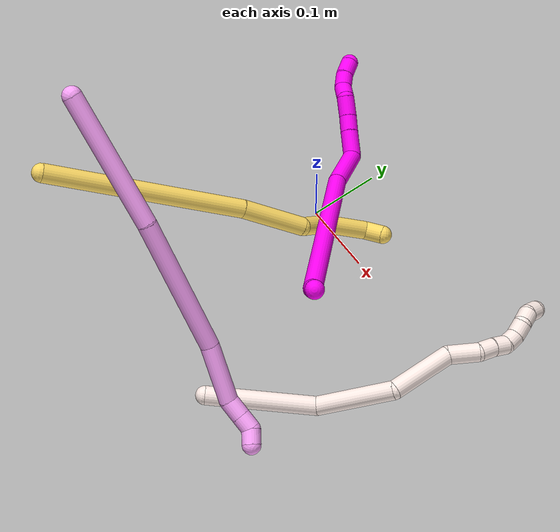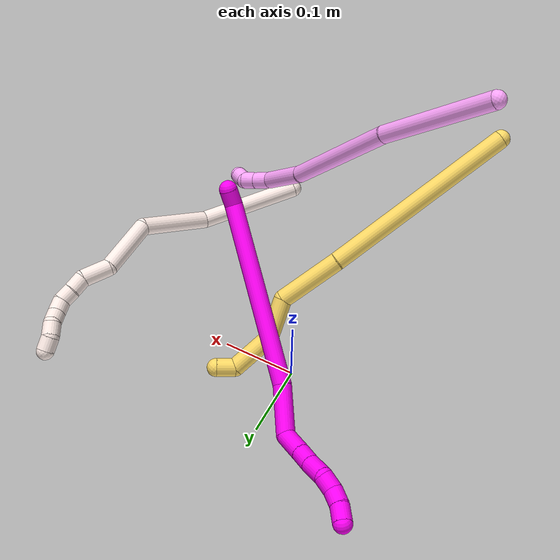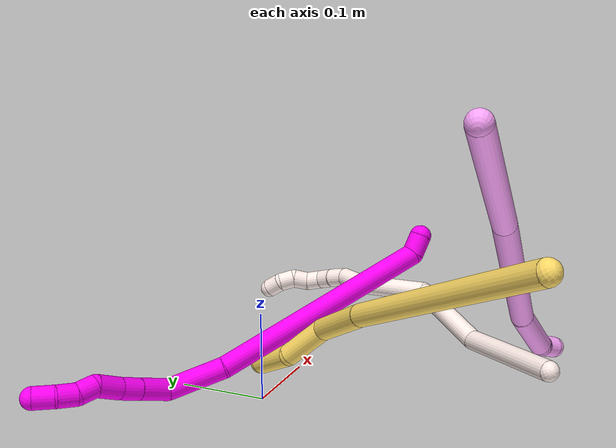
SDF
<sdf version="1.7">
 <world name="default">
  <model name="4">
   <static>0</static>
   <link name="4">
    <collision name="collision-cylinder-e_1_1_4">
     <pose>0.016926 -0.075879 0.042289 1.06235 0.192434 0.113282</pose>
     <geometry><cylinder><radius>0.0125</radius><length>0.177002</length></cylinder></geometry>
     <surface>
      <friction><ode><mu>1.16</mu><mu2>1.16</mu2><slip1>0</slip1><slip2>0</slip2></ode></friction>
      <contact><ode><kp>1e+06</kp><kd>1</kd><max_vel>0</max_vel><min_depth>0.001</min_depth></ode></contact>
     </surface>
    </collision>
    <visual name="visual-cylinder-e_1_1_4">
     <pose>0.016926 -0.075879 0.042289 1.06235 0.192434 0.113282</pose>
     <geometry><cylinder><radius>0.0125</radius><length>0.177002</length></cylinder></geometry>
     <material><ambient>1 0.65098 0.996078 1</ambient></material>
    </visual>
    <collision name="collision-cylinder-e_2_4_5">
     <pose>0.052027 -0.233662 0.116388 1.20035 0.203978 0.139859</pose>
     <geometry><cylinder><radius>0.0125</radius><length>0.179449</length></cylinder></geometry>
     <surface>
      <friction><ode><mu>1.16</mu><mu2>1.16</mu2><slip1>0</slip1><slip2>0</slip2></ode></friction>
      <contact><ode><kp>1e+06</kp><kd>1</kd><max_vel>0</max_vel><min_depth>0.001</min_depth></ode></contact>
     </surface>
    </collision>
    <visual name="visual-cylinder-e_2_4_5">
     <pose>0.052027 -0.233662 0.116388 1.20035 0.203978 0.139859</pose>
     <geometry><cylinder><radius>0.0125</radius><length>0.179449</length></cylinder></geometry>
     <material><ambient>1 0.65098 0.996078 1</ambient></material>
    </visual>
    <collision name="collision-cylinder-e_3_5_6">
     <pose>0.071057 -0.350828 0.164104 1.14706 0.022101 0.014276</pose>
     <geometry><cylinder><radius>0.0125</radius><length>0.077385</length></cylinder></geometry>
     <surface>
      <friction><ode><mu>1.16</mu><mu2>1.16</mu2><slip1>0</slip1><slip2>0</slip2></ode></friction>
      <contact><ode><kp>1e+06</kp><kd>1</kd><max_vel>0</max_vel><min_depth>0.001</min_depth></ode></contact>
     </surface>
    </collision>
    <visual name="visual-cylinder-e_3_5_6">
     <pose>0.071057 -0.350828 0.164104 1.14706 0.022101 0.014276</pose>
     <geometry><cylinder><radius>0.0125</radius><length>0.077385</length></cylinder></geometry>
     <material><ambient>1 0.65098 0.996078 1</ambient></material>
    </visual>
    <collision name="collision-cylinder-e_4_6_7">
     <pose>0.074253 -0.394537 0.188771 0.767175 0.190027 0.076885</pose>
     <geometry><cylinder><radius>0.0125</radius><length>0.024788</length></cylinder></geometry>
     <surface>
      <friction><ode><mu>1.16</mu><mu2>1.16</mu2><slip1>0</slip1><slip2>0</slip2></ode></friction>
      <contact><ode><kp>1e+06</kp><kd>1</kd><max_vel>0</max_vel><min_depth>0.001</min_depth></ode></contact>
     </surface>
    </collision>
    <visual name="visual-cylinder-e_4_6_7">
     <pose>0.074253 -0.394537 0.188771 0.767175 0.190027 0.076885</pose>
     <geometry><cylinder><radius>0.0125</radius><length>0.024788</length></cylinder></geometry>
     <material><ambient>1 0.65098 0.996078 1</ambient></material>
    </visual>
    <collision name="collision-cylinder-e_5_7_8">
     <pose>0.07831 -0.409656 0.205454 0.699842 0.164203 0.060041</pose>
     <geometry><cylinder><radius>0.0125</radius><length>0.020996</length></cylinder></geometry>
     <surface>
      <friction><ode><mu>1.16</mu><mu2>1.16</mu2><slip1>0</slip1><slip2>0</slip2></ode></friction>
      <contact><ode><kp>1e+06</kp><kd>1</kd><max_vel>0</max_vel><min_depth>0.001</min_depth></ode></contact>
     </surface>
    </collision>
    <visual name="visual-cylinder-e_5_7_8">
     <pose>0.07831 -0.409656 0.205454 0.699842 0.164203 0.060041</pose>
     <geometry><cylinder><radius>0.0125</radius><length>0.020996</length></cylinder></geometry>
     <material><ambient>1 0.65098 0.996078 1</ambient></material>
    </visual>
    <collision name="collision-cylinder-e_6_8_2">
     <pose>0.075491 -0.423548 0.218954 0.913162 -0.461252 -0.229656</pose>
     <geometry><cylinder><radius>0.0125</radius><length>0.02038</length></cylinder></geometry>
     <surface>
      <friction><ode><mu>1.16</mu><mu2>1.16</mu2><slip1>0</slip1><slip2>0</slip2></ode></friction>
      <contact><ode><kp>1e+06</kp><kd>1</kd><max_vel>0</max_vel><min_depth>0.001</min_depth></ode></contact>
     </surface>
    </collision>
    <visual name="visual-cylinder-e_6_8_2">
     <pose>0.075491 -0.423548 0.218954 0.913162 -0.461252 -0.229656</pose>
     <geometry><cylinder><radius>0.0125</radius><length>0.02038</length></cylinder></geometry>
     <material><ambient>1 0.65098 0.996078 1</ambient></material>
    </visual>
    <collision name="collision-sphere-2">
     <pose>0.070955 -0.430771 0.224532 0 -0 0</pose>
     <geometry><sphere><radius>0.0125</radius></sphere></geometry>
     <surface>
      <friction><ode><mu>1.16</mu><mu2>1.16</mu2><slip1>0</slip1><slip2>0</slip2></ode></friction>
      <contact><ode><kp>1e+06</kp><kd>1</kd><max_vel>0</max_vel><min_depth>0.001</min_depth></ode></contact>
     </surface>
    </collision>
    <visual name="visual-sphere-2">
     <pose>0.070955 -0.430771 0.224532 0 -0 0</pose>
     <geometry><sphere><radius>0.0125</radius></sphere></geometry>
     <material><ambient>1 0.65098 0.996078 1</ambient></material>
    </visual>
    <collision name="collision-sphere-4">
     <pose>0.033851 -0.151757 0.084578 0 -0 0</pose>
     <geometry><sphere><radius>0.0125</radius></sphere></geometry>
     <surface>
      <friction><ode><mu>1.16</mu><mu2>1.16</mu2><slip1>0</slip1><slip2>0</slip2></ode></friction>
      <contact><ode><kp>1e+06</kp><kd>1</kd><max_vel>0</max_vel><min_depth>0.001</min_depth></ode></contact>
     </surface>
    </collision>
    <visual name="visual-sphere-4">
     <pose>0.033851 -0.151757 0.084578 0 -0 0</pose>
     <geometry><sphere><radius>0.0125</radius></sphere></geometry>
     <material><ambient>1 0.65098 0.996078 1</ambient></material>
    </visual>
    <collision name="collision-sphere-1">
     <geometry><sphere><radius>0.0125</radius></sphere></geometry>
     <surface>
      <friction><ode><mu>1.16</mu><mu2>1.16</mu2><slip1>0</slip1><slip2>0</slip2></ode></friction>
      <contact><ode><kp>1e+06</kp><kd>1</kd><max_vel>0</max_vel><min_depth>0.001</min_depth></ode></contact>
     </surface>
    </collision>
    <visual name="visual-sphere-1">
     <geometry><sphere><radius>0.0125</radius></sphere></geometry>
     <material><ambient>1 0.65098 0.996078 1</ambient></material>
    </visual>
    <collision name="collision-sphere-8">
     <pose>0.080026 -0.416326 0.213376 0 -0 0</pose>
     <geometry><sphere><radius>0.0125</radius></sphere></geometry>
     <surface>
      <friction><ode><mu>1.16</mu><mu2>1.16</mu2><slip1>0</slip1><slip2>0</slip2></ode></friction>
      <contact><ode><kp>1e+06</kp><kd>1</kd><max_vel>0</max_vel><min_depth>0.001</min_depth></ode></contact>
     </surface>
    </collision>
    <visual name="visual-sphere-8">
     <pose>0.080026 -0.416326 0.213376 0 -0 0</pose>
     <geometry><sphere><radius>0.0125</radius></sphere></geometry>
     <material><ambient>1 0.65098 0.996078 1</ambient></material>
    </visual>
    <collision name="collision-sphere-5">
     <pose>0.070202 -0.315566 0.148198 0 -0 0</pose>
     <geometry><sphere><radius>0.0125</radius></sphere></geometry>
     <surface>
      <friction><ode><mu>1.16</mu><mu2>1.16</mu2><slip1>0</slip1><slip2>0</slip2></ode></friction>
      <contact><ode><kp>1e+06</kp><kd>1</kd><max_vel>0</max_vel><min_depth>0.001</min_depth></ode></contact>
     </surface>
    </collision>
    <visual name="visual-sphere-5">
     <pose>0.070202 -0.315566 0.148198 0 -0 0</pose>
     <geometry><sphere><radius>0.0125</radius></sphere></geometry>
     <material><ambient>1 0.65098 0.996078 1</ambient></material>
    </visual>
    <collision name="collision-sphere-6">
     <pose>0.071912 -0.38609 0.180009 0 -0 0</pose>
     <geometry><sphere><radius>0.0125</radius></sphere></geometry>
     <surface>
      <friction><ode><mu>1.16</mu><mu2>1.16</mu2><slip1>0</slip1><slip2>0</slip2></ode></friction>
      <contact><ode><kp>1e+06</kp><kd>1</kd><max_vel>0</max_vel><min_depth>0.001</min_depth></ode></contact>
     </surface>
    </collision>
    <visual name="visual-sphere-6">
     <pose>0.071912 -0.38609 0.180009 0 -0 0</pose>
     <geometry><sphere><radius>0.0125</radius></sphere></geometry>
     <material><ambient>1 0.65098 0.996078 1</ambient></material>
    </visual>
    <collision name="collision-sphere-7">
     <pose>0.076594 -0.402985 0.197532 0 -0 0</pose>
     <geometry><sphere><radius>0.0125</radius></sphere></geometry>
     <surface>
      <friction><ode><mu>1.16</mu><mu2>1.16</mu2><slip1>0</slip1><slip2>0</slip2></ode></friction>
      <contact><ode><kp>1e+06</kp><kd>1</kd><max_vel>0</max_vel><min_depth>0.001</min_depth></ode></contact>
     </surface>
    </collision>
    <visual name="visual-sphere-7">
     <pose>0.076594 -0.402985 0.197532 0 -0 0</pose>
     <geometry><sphere><radius>0.0125</radius></sphere></geometry>
     <material><ambient>1 0.65098 0.996078 1</ambient></material>
    </visual>
    <inertial>
     <pose>0.045708 -0.219045 0.109051 0 -0 0</pose>
     <mass>0.5</mass>
     <inertia>
      <ixx>0.001103</ixx>
      <ixy>0</ixy>
      <ixz>0</ixz>
      <iyy>0.00053</iyy>
      <iyz>0</iyz>
      <izz>0.000718</izz>
     </inertia>
    </inertial>
   </link>
   <pose>-0.134239 -0.262182 0.339053 1.1818 0.306578 1.60151</pose>
  </model>
  <model name="5">
   <static>0</static>
   <link name="5">
    <collision name="collision-cylinder-e_1_1_4">
     <pose>0.02283 0.027241 -0.129383 -2.93408 0.170984 -1.37723</pose>
     <geometry><cylinder><radius>0.0125</radius><length>0.268352</length></cylinder></geometry>
     <surface>
      <friction><ode><mu>1.16</mu><mu2>1.16</mu2><slip1>0</slip1><slip2>0</slip2></ode></friction>
      <contact><ode><kp>1e+06</kp><kd>1</kd><max_vel>0</max_vel><min_depth>0.001</min_depth></ode></contact>
     </surface>
    </collision>
    <visual name="visual-cylinder-e_1_1_4">
     <pose>0.02283 0.027241 -0.129383 -2.93408 0.170984 -1.37723</pose>
     <geometry><cylinder><radius>0.0125</radius><length>0.268352</length></cylinder></geometry>
     <material><ambient>1 0.858824 0.4 1</ambient></material>
    </visual>
    <collision name="collision-cylinder-e_2_4_5">
     <pose>0.056241 0.059932 -0.301524 -3.01481 0.240695 -2.17489</pose>
     <geometry><cylinder><radius>0.0125</radius><length>0.088768</length></cylinder></geometry>
     <surface>
      <friction><ode><mu>1.16</mu><mu2>1.16</mu2><slip1>0</slip1><slip2>0</slip2></ode></friction>
      <contact><ode><kp>1e+06</kp><kd>1</kd><max_vel>0</max_vel><min_depth>0.001</min_depth></ode></contact>
     </surface>
    </collision>
    <visual name="visual-cylinder-e_2_4_5">
     <pose>0.056241 0.059932 -0.301524 -3.01481 0.240695 -2.17489</pose>
     <geometry><cylinder><radius>0.0125</radius><length>0.088768</length></cylinder></geometry>
     <material><ambient>1 0.858824 0.4 1</ambient></material>
    </visual>
    <collision name="collision-cylinder-e_3_5_6">
     <pose>0.057726 0.062479 -0.370264 3.03031 -0.334793 -2.50477</pose>
     <geometry><cylinder><radius>0.0125</radius><length>0.055359</length></cylinder></geometry>
     <surface>
      <friction><ode><mu>1.16</mu><mu2>1.16</mu2><slip1>0</slip1><slip2>0</slip2></ode></friction>
      <contact><ode><kp>1e+06</kp><kd>1</kd><max_vel>0</max_vel><min_depth>0.001</min_depth></ode></contact>
     </surface>
    </collision>
    <visual name="visual-cylinder-e_3_5_6">
     <pose>0.057726 0.062479 -0.370264 3.03031 -0.334793 -2.50477</pose>
     <geometry><cylinder><radius>0.0125</radius><length>0.055359</length></cylinder></geometry>
     <material><ambient>1 0.858824 0.4 1</ambient></material>
    </visual>
    <collision name="collision-cylinder-e_4_6_7">
     <pose>0.051949 0.064564 -0.426376 -2.97751 0.108187 -1.16466</pose>
     <geometry><cylinder><radius>0.0125</radius><length>0.061442</length></cylinder></geometry>
     <surface>
      <friction><ode><mu>1.16</mu><mu2>1.16</mu2><slip1>0</slip1><slip2>0</slip2></ode></friction>
      <contact><ode><kp>1e+06</kp><kd>1</kd><max_vel>0</max_vel><min_depth>0.001</min_depth></ode></contact>
     </surface>
    </collision>
    <visual name="visual-cylinder-e_4_6_7">
     <pose>0.051949 0.064564 -0.426376 -2.97751 0.108187 -1.16466</pose>
     <geometry><cylinder><radius>0.0125</radius><length>0.061442</length></cylinder></geometry>
     <material><ambient>1 0.858824 0.4 1</ambient></material>
    </visual>
    <collision name="collision-cylinder-e_5_7_2">
     <pose>0.062988 0.076709 -0.4642 -2.39238 0.633788 -1.39038</pose>
     <geometry><cylinder><radius>0.0125</radius><length>0.026079</length></cylinder></geometry>
     <surface>
      <friction><ode><mu>1.16</mu><mu2>1.16</mu2><slip1>0</slip1><slip2>0</slip2></ode></friction>
      <contact><ode><kp>1e+06</kp><kd>1</kd><max_vel>0</max_vel><min_depth>0.001</min_depth></ode></contact>
     </surface>
    </collision>
    <visual name="visual-cylinder-e_5_7_2">
     <pose>0.062988 0.076709 -0.4642 -2.39238 0.633788 -1.39038</pose>
     <geometry><cylinder><radius>0.0125</radius><length>0.026079</length></cylinder></geometry>
     <material><ambient>1 0.858824 0.4 1</ambient></material>
    </visual>
    <collision name="collision-sphere-2">
     <pose>0.07071 0.083865 -0.471894 0 -0 0</pose>
     <geometry><sphere><radius>0.0125</radius></sphere></geometry>
     <surface>
      <friction><ode><mu>1.16</mu><mu2>1.16</mu2><slip1>0</slip1><slip2>0</slip2></ode></friction>
      <contact><ode><kp>1e+06</kp><kd>1</kd><max_vel>0</max_vel><min_depth>0.001</min_depth></ode></contact>
     </surface>
    </collision>
    <visual name="visual-sphere-2">
     <pose>0.07071 0.083865 -0.471894 0 -0 0</pose>
     <geometry><sphere><radius>0.0125</radius></sphere></geometry>
     <material><ambient>1 0.858824 0.4 1</ambient></material>
    </visual>
    <collision name="collision-sphere-7">
     <pose>0.055266 0.069553 -0.456507 0 -0 0</pose>
     <geometry><sphere><radius>0.0125</radius></sphere></geometry>
     <surface>
      <friction><ode><mu>1.16</mu><mu2>1.16</mu2><slip1>0</slip1><slip2>0</slip2></ode></friction>
      <contact><ode><kp>1e+06</kp><kd>1</kd><max_vel>0</max_vel><min_depth>0.001</min_depth></ode></contact>
     </surface>
    </collision>
    <visual name="visual-sphere-7">
     <pose>0.055266 0.069553 -0.456507 0 -0 0</pose>
     <geometry><sphere><radius>0.0125</radius></sphere></geometry>
     <material><ambient>1 0.858824 0.4 1</ambient></material>
    </visual>
    <collision name="collision-sphere-6">
     <pose>0.048631 0.059575 -0.396244 0 -0 0</pose>
     <geometry><sphere><radius>0.0125</radius></sphere></geometry>
     <surface>
      <friction><ode><mu>1.16</mu><mu2>1.16</mu2><slip1>0</slip1><slip2>0</slip2></ode></friction>
      <contact><ode><kp>1e+06</kp><kd>1</kd><max_vel>0</max_vel><min_depth>0.001</min_depth></ode></contact>
     </surface>
    </collision>
    <visual name="visual-sphere-6">
     <pose>0.048631 0.059575 -0.396244 0 -0 0</pose>
     <geometry><sphere><radius>0.0125</radius></sphere></geometry>
     <material><ambient>1 0.858824 0.4 1</ambient></material>
    </visual>
    <collision name="collision-sphere-5">
     <pose>0.066821 0.065382 -0.344283 0 -0 0</pose>
     <geometry><sphere><radius>0.0125</radius></sphere></geometry>
     <surface>
      <friction><ode><mu>1.16</mu><mu2>1.16</mu2><slip1>0</slip1><slip2>0</slip2></ode></friction>
      <contact><ode><kp>1e+06</kp><kd>1</kd><max_vel>0</max_vel><min_depth>0.001</min_depth></ode></contact>
     </surface>
    </collision>
    <visual name="visual-sphere-5">
     <pose>0.066821 0.065382 -0.344283 0 -0 0</pose>
     <geometry><sphere><radius>0.0125</radius></sphere></geometry>
     <material><ambient>1 0.858824 0.4 1</ambient></material>
    </visual>
    <collision name="collision-sphere-1">
     <geometry><sphere><radius>0.0125</radius></sphere></geometry>
     <surface>
      <friction><ode><mu>1.16</mu><mu2>1.16</mu2><slip1>0</slip1><slip2>0</slip2></ode></friction>
      <contact><ode><kp>1e+06</kp><kd>1</kd><max_vel>0</max_vel><min_depth>0.001</min_depth></ode></contact>
     </surface>
    </collision>
    <visual name="visual-sphere-1">
     <geometry><sphere><radius>0.0125</radius></sphere></geometry>
     <material><ambient>1 0.858824 0.4 1</ambient></material>
    </visual>
    <collision name="collision-sphere-4">
     <pose>0.045661 0.054482 -0.258765 0 -0 0</pose>
     <geometry><sphere><radius>0.0125</radius></sphere></geometry>
     <surface>
      <friction><ode><mu>1.16</mu><mu2>1.16</mu2><slip1>0</slip1><slip2>0</slip2></ode></friction>
      <contact><ode><kp>1e+06</kp><kd>1</kd><max_vel>0</max_vel><min_depth>0.001</min_depth></ode></contact>
     </surface>
    </collision>
    <visual name="visual-sphere-4">
     <pose>0.045661 0.054482 -0.258765 0 -0 0</pose>
     <geometry><sphere><radius>0.0125</radius></sphere></geometry>
     <material><ambient>1 0.858824 0.4 1</ambient></material>
    </visual>
    <inertial>
     <pose>0.038298 0.044113 -0.240573 0 -0 0</pose>
     <mass>0.5</mass>
     <inertia>
      <ixx>-0.001373</ixx>
      <ixy>0</ixy>
      <ixz>0</ixz>
      <iyy>-0.001848</iyy>
      <iyz>0</iyz>
      <izz>-0.000666</izz>
     </inertia>
    </inertial>
   </link>
   <pose>-0.137902 -0.32354 0.225339 0.930146 -0.053369 -0.359459</pose>
  </model>
  <model name="10">
   <static>0</static>
   <link name="10">
    <collision name="collision-cylinder-e_1_1_4">
     <pose>-0.000932 -0.000779 -0.011517 3.07404 -0.080567 -1.7462</pose>
     <geometry><cylinder><radius>0.0125</radius><length>0.023162</length></cylinder></geometry>
     <surface>
      <friction><ode><mu>1.16</mu><mu2>1.16</mu2><slip1>0</slip1><slip2>0</slip2></ode></friction>
      <contact><ode><kp>1e+06</kp><kd>1</kd><max_vel>0</max_vel><min_depth>0.001</min_depth></ode></contact>
     </surface>
    </collision>
    <visual name="visual-cylinder-e_1_1_4">
     <pose>-0.000932 -0.000779 -0.011517 3.07404 -0.080567 -1.7462</pose>
     <geometry><cylinder><radius>0.0125</radius><length>0.023162</length></cylinder></geometry>
     <material><ambient>1 0 0.964706 1</ambient></material>
    </visual>
    <collision name="collision-cylinder-e_2_4_5">
     <pose>-0.055462 0.051279 -0.125479 -2.66541 -0.435243 1.47786</pose>
     <geometry><cylinder><radius>0.0125</radius><length>0.25424</length></cylinder></geometry>
     <surface>
      <friction><ode><mu>1.16</mu><mu2>1.16</mu2><slip1>0</slip1><slip2>0</slip2></ode></friction>
      <contact><ode><kp>1e+06</kp><kd>1</kd><max_vel>0</max_vel><min_depth>0.001</min_depth></ode></contact>
     </surface>
    </collision>
    <visual name="visual-cylinder-e_2_4_5">
     <pose>-0.055462 0.051279 -0.125479 -2.66541 -0.435243 1.47786</pose>
     <geometry><cylinder><radius>0.0125</radius><length>0.25424</length></cylinder></geometry>
     <material><ambient>1 0 0.964706 1</ambient></material>
    </visual>
    <collision name="collision-cylinder-e_3_5_6">
     <pose>-0.120168 0.124183 -0.252072 -2.44824 -0.340062 0.887287</pose>
     <geometry><cylinder><radius>0.0125</radius><length>0.066611</length></cylinder></geometry>
     <surface>
      <friction><ode><mu>1.16</mu><mu2>1.16</mu2><slip1>0</slip1><slip2>0</slip2></ode></friction>
      <contact><ode><kp>1e+06</kp><kd>1</kd><max_vel>0</max_vel><min_depth>0.001</min_depth></ode></contact>
     </surface>
    </collision>
    <visual name="visual-cylinder-e_3_5_6">
     <pose>-0.120168 0.124183 -0.252072 -2.44824 -0.340062 0.887287</pose>
     <geometry><cylinder><radius>0.0125</radius><length>0.066611</length></cylinder></geometry>
     <material><ambient>1 0 0.964706 1</ambient></material>
    </visual>
    <collision name="collision-cylinder-e_4_6_7">
     <pose>-0.147316 0.151929 -0.28042 -2.07126 -1.0713 1.5719</pose>
     <geometry><cylinder><radius>0.0125</radius><length>0.036543</length></cylinder></geometry>
     <surface>
      <friction><ode><mu>1.16</mu><mu2>1.16</mu2><slip1>0</slip1><slip2>0</slip2></ode></friction>
      <contact><ode><kp>1e+06</kp><kd>1</kd><max_vel>0</max_vel><min_depth>0.001</min_depth></ode></contact>
     </surface>
    </collision>
    <visual name="visual-cylinder-e_4_6_7">
     <pose>-0.147316 0.151929 -0.28042 -2.07126 -1.0713 1.5719</pose>
     <geometry><cylinder><radius>0.0125</radius><length>0.036543</length></cylinder></geometry>
     <material><ambient>1 0 0.964706 1</ambient></material>
    </visual>
    <collision name="collision-cylinder-e_5_7_8">
     <pose>-0.173517 0.164795 -0.287185 -2.03014 -1.0531 1.50475</pose>
     <geometry><cylinder><radius>0.0125</radius><length>0.023388</length></cylinder></geometry>
     <surface>
      <friction><ode><mu>1.16</mu><mu2>1.16</mu2><slip1>0</slip1><slip2>0</slip2></ode></friction>
      <contact><ode><kp>1e+06</kp><kd>1</kd><max_vel>0</max_vel><min_depth>0.001</min_depth></ode></contact>
     </surface>
    </collision>
    <visual name="visual-cylinder-e_5_7_8">
     <pose>-0.173517 0.164795 -0.287185 -2.03014 -1.0531 1.50475</pose>
     <geometry><cylinder><radius>0.0125</radius><length>0.023388</length></cylinder></geometry>
     <material><ambient>1 0 0.964706 1</ambient></material>
    </visual>
    <collision name="collision-cylinder-e_6_8_9">
     <pose>-0.19673 0.176001 -0.291679 -1.88073 -1.11984 1.41934</pose>
     <geometry><cylinder><radius>0.0125</radius><length>0.029002</length></cylinder></geometry>
     <surface>
      <friction><ode><mu>1.16</mu><mu2>1.16</mu2><slip1>0</slip1><slip2>0</slip2></ode></friction>
      <contact><ode><kp>1e+06</kp><kd>1</kd><max_vel>0</max_vel><min_depth>0.001</min_depth></ode></contact>
     </surface>
    </collision>
    <visual name="visual-cylinder-e_6_8_9">
     <pose>-0.19673 0.176001 -0.291679 -1.88073 -1.11984 1.41934</pose>
     <geometry><cylinder><radius>0.0125</radius><length>0.029002</length></cylinder></geometry>
     <material><ambient>1 0 0.964706 1</ambient></material>
    </visual>
    <collision name="collision-cylinder-e_7_9_10">
     <pose>-0.217601 0.184924 -0.300316 -2.73309 -0.818949 2.25099</pose>
     <geometry><cylinder><radius>0.0125</radius><length>0.02141</length></cylinder></geometry>
     <surface>
      <friction><ode><mu>1.16</mu><mu2>1.16</mu2><slip1>0</slip1><slip2>0</slip2></ode></friction>
      <contact><ode><kp>1e+06</kp><kd>1</kd><max_vel>0</max_vel><min_depth>0.001</min_depth></ode></contact>
     </surface>
    </collision>
    <visual name="visual-cylinder-e_7_9_10">
     <pose>-0.217601 0.184924 -0.300316 -2.73309 -0.818949 2.25099</pose>
     <geometry><cylinder><radius>0.0125</radius><length>0.02141</length></cylinder></geometry>
     <material><ambient>1 0 0.964706 1</ambient></material>
    </visual>
    <collision name="collision-cylinder-e_8_10_11">
     <pose>-0.233114 0.194004 -0.31168 -2.21664 -0.782849 1.383</pose>
     <geometry><cylinder><radius>0.0125</radius><length>0.021818</length></cylinder></geometry>
     <surface>
      <friction><ode><mu>1.16</mu><mu2>1.16</mu2><slip1>0</slip1><slip2>0</slip2></ode></friction>
      <contact><ode><kp>1e+06</kp><kd>1</kd><max_vel>0</max_vel><min_depth>0.001</min_depth></ode></contact>
     </surface>
    </collision>
    <visual name="visual-cylinder-e_8_10_11">
     <pose>-0.233114 0.194004 -0.31168 -2.21664 -0.782849 1.383</pose>
     <geometry><cylinder><radius>0.0125</radius><length>0.021818</length></cylinder></geometry>
     <material><ambient>1 0 0.964706 1</ambient></material>
    </visual>
    <collision name="collision-cylinder-e_9_11_2">
     <pose>-0.247189 0.208678 -0.32172 -2.13567 -0.56515 0.971207</pose>
     <geometry><cylinder><radius>0.0125</radius><length>0.023826</length></cylinder></geometry>
     <surface>
      <friction><ode><mu>1.16</mu><mu2>1.16</mu2><slip1>0</slip1><slip2>0</slip2></ode></friction>
      <contact><ode><kp>1e+06</kp><kd>1</kd><max_vel>0</max_vel><min_depth>0.001</min_depth></ode></contact>
     </surface>
    </collision>
    <visual name="visual-cylinder-e_9_11_2">
     <pose>-0.247189 0.208678 -0.32172 -2.13567 -0.56515 0.971207</pose>
     <geometry><cylinder><radius>0.0125</radius><length>0.023826</length></cylinder></geometry>
     <material><ambient>1 0 0.964706 1</ambient></material>
    </visual>
    <collision name="collision-sphere-2">
     <pose>-0.253569 0.217176 -0.327106 0 -0 0</pose>
     <geometry><sphere><radius>0.0125</radius></sphere></geometry>
     <surface>
      <friction><ode><mu>1.16</mu><mu2>1.16</mu2><slip1>0</slip1><slip2>0</slip2></ode></friction>
      <contact><ode><kp>1e+06</kp><kd>1</kd><max_vel>0</max_vel><min_depth>0.001</min_depth></ode></contact>
     </surface>
    </collision>
    <visual name="visual-sphere-2">
     <pose>-0.253569 0.217176 -0.327106 0 -0 0</pose>
     <geometry><sphere><radius>0.0125</radius></sphere></geometry>
     <material><ambient>1 0 0.964706 1</ambient></material>
    </visual>
    <collision name="collision-sphere-11">
     <pose>-0.240809 0.20018 -0.316335 0 -0 0</pose>
     <geometry><sphere><radius>0.0125</radius></sphere></geometry>
     <surface>
      <friction><ode><mu>1.16</mu><mu2>1.16</mu2><slip1>0</slip1><slip2>0</slip2></ode></friction>
      <contact><ode><kp>1e+06</kp><kd>1</kd><max_vel>0</max_vel><min_depth>0.001</min_depth></ode></contact>
     </surface>
    </collision>
    <visual name="visual-sphere-11">
     <pose>-0.240809 0.20018 -0.316335 0 -0 0</pose>
     <geometry><sphere><radius>0.0125</radius></sphere></geometry>
     <material><ambient>1 0 0.964706 1</ambient></material>
    </visual>
    <collision name="collision-sphere-10">
     <pose>-0.22542 0.187828 -0.307026 0 -0 0</pose>
     <geometry><sphere><radius>0.0125</radius></sphere></geometry>
     <surface>
      <friction><ode><mu>1.16</mu><mu2>1.16</mu2><slip1>0</slip1><slip2>0</slip2></ode></friction>
      <contact><ode><kp>1e+06</kp><kd>1</kd><max_vel>0</max_vel><min_depth>0.001</min_depth></ode></contact>
     </surface>
    </collision>
    <visual name="visual-sphere-10">
     <pose>-0.22542 0.187828 -0.307026 0 -0 0</pose>
     <geometry><sphere><radius>0.0125</radius></sphere></geometry>
     <material><ambient>1 0 0.964706 1</ambient></material>
    </visual>
    <collision name="collision-sphere-9">
     <pose>-0.209782 0.18202 -0.293606 0 -0 0</pose>
     <geometry><sphere><radius>0.0125</radius></sphere></geometry>
     <surface>
      <friction><ode><mu>1.16</mu><mu2>1.16</mu2><slip1>0</slip1><slip2>0</slip2></ode></friction>
      <contact><ode><kp>1e+06</kp><kd>1</kd><max_vel>0</max_vel><min_depth>0.001</min_depth></ode></contact>
     </surface>
    </collision>
    <visual name="visual-sphere-9">
     <pose>-0.209782 0.18202 -0.293606 0 -0 0</pose>
     <geometry><sphere><radius>0.0125</radius></sphere></geometry>
     <material><ambient>1 0 0.964706 1</ambient></material>
    </visual>
    <collision name="collision-sphere-4">
     <pose>-0.001864 -0.001558 -0.023034 0 -0 0</pose>
     <geometry><sphere><radius>0.0125</radius></sphere></geometry>
     <surface>
      <friction><ode><mu>1.16</mu><mu2>1.16</mu2><slip1>0</slip1><slip2>0</slip2></ode></friction>
      <contact><ode><kp>1e+06</kp><kd>1</kd><max_vel>0</max_vel><min_depth>0.001</min_depth></ode></contact>
     </surface>
    </collision>
    <visual name="visual-sphere-4">
     <pose>-0.001864 -0.001558 -0.023034 0 -0 0</pose>
     <geometry><sphere><radius>0.0125</radius></sphere></geometry>
     <material><ambient>1 0 0.964706 1</ambient></material>
    </visual>
    <collision name="collision-sphere-1">
     <geometry><sphere><radius>0.0125</radius></sphere></geometry>
     <surface>
      <friction><ode><mu>1.16</mu><mu2>1.16</mu2><slip1>0</slip1><slip2>0</slip2></ode></friction>
      <contact><ode><kp>1e+06</kp><kd>1</kd><max_vel>0</max_vel><min_depth>0.001</min_depth></ode></contact>
     </surface>
    </collision>
    <visual name="visual-sphere-1">
     <geometry><sphere><radius>0.0125</radius></sphere></geometry>
     <material><ambient>1 0 0.964706 1</ambient></material>
    </visual>
    <collision name="collision-sphere-8">
     <pose>-0.183679 0.169982 -0.289751 0 -0 0</pose>
     <geometry><sphere><radius>0.0125</radius></sphere></geometry>
     <surface>
      <friction><ode><mu>1.16</mu><mu2>1.16</mu2><slip1>0</slip1><slip2>0</slip2></ode></friction>
      <contact><ode><kp>1e+06</kp><kd>1</kd><max_vel>0</max_vel><min_depth>0.001</min_depth></ode></contact>
     </surface>
    </collision>
    <visual name="visual-sphere-8">
     <pose>-0.183679 0.169982 -0.289751 0 -0 0</pose>
     <geometry><sphere><radius>0.0125</radius></sphere></geometry>
     <material><ambient>1 0 0.964706 1</ambient></material>
    </visual>
    <collision name="collision-sphere-5">
     <pose>-0.109059 0.104116 -0.227924 0 -0 0</pose>
     <geometry><sphere><radius>0.0125</radius></sphere></geometry>
     <surface>
      <friction><ode><mu>1.16</mu><mu2>1.16</mu2><slip1>0</slip1><slip2>0</slip2></ode></friction>
      <contact><ode><kp>1e+06</kp><kd>1</kd><max_vel>0</max_vel><min_depth>0.001</min_depth></ode></contact>
     </surface>
    </collision>
    <visual name="visual-sphere-5">
     <pose>-0.109059 0.104116 -0.227924 0 -0 0</pose>
     <geometry><sphere><radius>0.0125</radius></sphere></geometry>
     <material><ambient>1 0 0.964706 1</ambient></material>
    </visual>
    <collision name="collision-sphere-6">
     <pose>-0.131277 0.144251 -0.276221 0 -0 0</pose>
     <geometry><sphere><radius>0.0125</radius></sphere></geometry>
     <surface>
      <friction><ode><mu>1.16</mu><mu2>1.16</mu2><slip1>0</slip1><slip2>0</slip2></ode></friction>
      <contact><ode><kp>1e+06</kp><kd>1</kd><max_vel>0</max_vel><min_depth>0.001</min_depth></ode></contact>
     </surface>
    </collision>
    <visual name="visual-sphere-6">
     <pose>-0.131277 0.144251 -0.276221 0 -0 0</pose>
     <geometry><sphere><radius>0.0125</radius></sphere></geometry>
     <material><ambient>1 0 0.964706 1</ambient></material>
    </visual>
    <collision name="collision-sphere-7">
     <pose>-0.163356 0.159608 -0.28462 0 -0 0</pose>
     <geometry><sphere><radius>0.0125</radius></sphere></geometry>
     <surface>
      <friction><ode><mu>1.16</mu><mu2>1.16</mu2><slip1>0</slip1><slip2>0</slip2></ode></friction>
      <contact><ode><kp>1e+06</kp><kd>1</kd><max_vel>0</max_vel><min_depth>0.001</min_depth></ode></contact>
     </surface>
    </collision>
    <visual name="visual-sphere-7">
     <pose>-0.163356 0.159608 -0.28462 0 -0 0</pose>
     <geometry><sphere><radius>0.0125</radius></sphere></geometry>
     <material><ambient>1 0 0.964706 1</ambient></material>
    </visual>
    <inertial>
     <pose>-0.105817 0.097931 -0.190556 0 -0 0</pose>
     <mass>0.5</mass>
     <inertia>
      <ixx>0.001385</ixx>
      <ixy>0</ixy>
      <ixz>0</ixz>
      <iyy>0.001443</iyy>
      <iyz>0</iyz>
      <izz>-1.9e-05</izz>
     </inertia>
    </inertial>
   </link>
   <pose>0.165406 -0.126864 0.160566 0.297912 0.419204 -0.015773</pose>
  </model>
  <model name="11">
   <static>0</static>
   <link name="11">
    <collision name="collision-cylinder-e_1_1_4">
     <pose>0.020855 0.022875 -0.065596 -2.80605 0.29164 -1.42872</pose>
     <geometry><cylinder><radius>0.0125</radius><length>0.145066</length></cylinder></geometry>
     <surface>
      <friction><ode><mu>1.16</mu><mu2>1.16</mu2><slip1>0</slip1><slip2>0</slip2></ode></friction>
      <contact><ode><kp>1e+06</kp><kd>1</kd><max_vel>0</max_vel><min_depth>0.001</min_depth></ode></contact>
     </surface>
    </collision>
    <visual name="visual-cylinder-e_1_1_4">
     <pose>0.020855 0.022875 -0.065596 -2.80605 0.29164 -1.42872</pose>
     <geometry><cylinder><radius>0.0125</radius><length>0.145066</length></cylinder></geometry>
     <material><ambient>1 0.933333 0.909804 1</ambient></material>
    </visual>
    <collision name="collision-cylinder-e_2_4_5">
     <pose>0.057706 0.082286 -0.165376 -2.32296 0.309427 -0.690239</pose>
     <geometry><cylinder><radius>0.0125</radius><length>0.105058</length></cylinder></geometry>
     <surface>
      <friction><ode><mu>1.16</mu><mu2>1.16</mu2><slip1>0</slip1><slip2>0</slip2></ode></friction>
      <contact><ode><kp>1e+06</kp><kd>1</kd><max_vel>0</max_vel><min_depth>0.001</min_depth></ode></contact>
     </surface>
    </collision>
    <visual name="visual-cylinder-e_2_4_5">
     <pose>0.057706 0.082286 -0.165376 -2.32296 0.309427 -0.690239</pose>
     <geometry><cylinder><radius>0.0125</radius><length>0.105058</length></cylinder></geometry>
     <material><ambient>1 0.933333 0.909804 1</ambient></material>
    </visual>
    <collision name="collision-cylinder-e_3_5_6">
     <pose>0.059817 0.142901 -0.232456 -2.50972 -0.328264 0.937937</pose>
     <geometry><cylinder><radius>0.0125</radius><length>0.086132</length></cylinder></geometry>
     <surface>
      <friction><ode><mu>1.16</mu><mu2>1.16</mu2><slip1>0</slip1><slip2>0</slip2></ode></friction>
      <contact><ode><kp>1e+06</kp><kd>1</kd><max_vel>0</max_vel><min_depth>0.001</min_depth></ode></contact>
     </surface>
    </collision>
    <visual name="visual-cylinder-e_3_5_6">
     <pose>0.059817 0.142901 -0.232456 -2.50972 -0.328264 0.937937</pose>
     <geometry><cylinder><radius>0.0125</radius><length>0.086132</length></cylinder></geometry>
     <material><ambient>1 0.933333 0.909804 1</ambient></material>
    </visual>
    <collision name="collision-cylinder-e_4_6_7">
     <pose>0.04945 0.176376 -0.283218 -2.6574 0.17254 -0.673756</pose>
     <geometry><cylinder><radius>0.0125</radius><length>0.040982</length></cylinder></geometry>
     <surface>
      <friction><ode><mu>1.16</mu><mu2>1.16</mu2><slip1>0</slip1><slip2>0</slip2></ode></friction>
      <contact><ode><kp>1e+06</kp><kd>1</kd><max_vel>0</max_vel><min_depth>0.001</min_depth></ode></contact>
     </surface>
    </collision>
    <visual name="visual-cylinder-e_4_6_7">
     <pose>0.04945 0.176376 -0.283218 -2.6574 0.17254 -0.673756</pose>
     <geometry><cylinder><radius>0.0125</radius><length>0.040982</length></cylinder></geometry>
     <material><ambient>1 0.933333 0.909804 1</ambient></material>
    </visual>
    <collision name="collision-cylinder-e_5_7_8">
     <pose>0.050224 0.189618 -0.311228 -2.7793 -0.247788 1.19425</pose>
     <geometry><cylinder><radius>0.0125</radius><length>0.022378</length></cylinder></geometry>
     <surface>
      <friction><ode><mu>1.16</mu><mu2>1.16</mu2><slip1>0</slip1><slip2>0</slip2></ode></friction>
      <contact><ode><kp>1e+06</kp><kd>1</kd><max_vel>0</max_vel><min_depth>0.001</min_depth></ode></contact>
     </surface>
    </collision>
    <visual name="visual-cylinder-e_5_7_8">
     <pose>0.050224 0.189618 -0.311228 -2.7793 -0.247788 1.19425</pose>
     <geometry><cylinder><radius>0.0125</radius><length>0.022378</length></cylinder></geometry>
     <material><ambient>1 0.933333 0.909804 1</ambient></material>
    </visual>
    <collision name="collision-cylinder-e_6_8_9">
     <pose>0.045825 0.196141 -0.330903 -2.8676 -0.165649 1.08403</pose>
     <geometry><cylinder><radius>0.0125</radius><length>0.020078</length></cylinder></geometry>
     <surface>
      <friction><ode><mu>1.16</mu><mu2>1.16</mu2><slip1>0</slip1><slip2>0</slip2></ode></friction>
      <contact><ode><kp>1e+06</kp><kd>1</kd><max_vel>0</max_vel><min_depth>0.001</min_depth></ode></contact>
     </surface>
    </collision>
    <visual name="visual-cylinder-e_6_8_9">
     <pose>0.045825 0.196141 -0.330903 -2.8676 -0.165649 1.08403</pose>
     <geometry><cylinder><radius>0.0125</radius><length>0.020078</length></cylinder></geometry>
     <material><ambient>1 0.933333 0.909804 1</ambient></material>
    </visual>
    <collision name="collision-cylinder-e_7_9_10">
     <pose>0.038732 0.202828 -0.347837 -2.64535 -0.573509 1.72205</pose>
     <geometry><cylinder><radius>0.0125</radius><length>0.02004</length></cylinder></geometry>
     <surface>
      <friction><ode><mu>1.16</mu><mu2>1.16</mu2><slip1>0</slip1><slip2>0</slip2></ode></friction>
      <contact><ode><kp>1e+06</kp><kd>1</kd><max_vel>0</max_vel><min_depth>0.001</min_depth></ode></contact>
     </surface>
    </collision>
    <visual name="visual-cylinder-e_7_9_10">
     <pose>0.038732 0.202828 -0.347837 -2.64535 -0.573509 1.72205</pose>
     <geometry><cylinder><radius>0.0125</radius><length>0.02004</length></cylinder></geometry>
     <material><ambient>1 0.933333 0.909804 1</ambient></material>
    </visual>
    <collision name="collision-cylinder-e_8_10_11">
     <pose>0.027711 0.214009 -0.35957 -2.11396 -0.587847 0.984565</pose>
     <geometry><cylinder><radius>0.0125</radius><length>0.020139</length></cylinder></geometry>
     <surface>
      <friction><ode><mu>1.16</mu><mu2>1.16</mu2><slip1>0</slip1><slip2>0</slip2></ode></friction>
      <contact><ode><kp>1e+06</kp><kd>1</kd><max_vel>0</max_vel><min_depth>0.001</min_depth></ode></contact>
     </surface>
    </collision>
    <visual name="visual-cylinder-e_8_10_11">
     <pose>0.027711 0.214009 -0.35957 -2.11396 -0.587847 0.984565</pose>
     <geometry><cylinder><radius>0.0125</radius><length>0.020139</length></cylinder></geometry>
     <material><ambient>1 0.933333 0.909804 1</ambient></material>
    </visual>
    <collision name="collision-cylinder-e_9_11_12">
     <pose>0.014668 0.224369 -0.369795 -2.64596 -0.838862 2.10933</pose>
     <geometry><cylinder><radius>0.0125</radius><length>0.020054</length></cylinder></geometry>
     <surface>
      <friction><ode><mu>1.16</mu><mu2>1.16</mu2><slip1>0</slip1><slip2>0</slip2></ode></friction>
      <contact><ode><kp>1e+06</kp><kd>1</kd><max_vel>0</max_vel><min_depth>0.001</min_depth></ode></contact>
     </surface>
    </collision>
    <visual name="visual-cylinder-e_9_11_12">
     <pose>0.014668 0.224369 -0.369795 -2.64596 -0.838862 2.10933</pose>
     <geometry><cylinder><radius>0.0125</radius><length>0.020054</length></cylinder></geometry>
     <material><ambient>1 0.933333 0.909804 1</ambient></material>
    </visual>
    <collision name="collision-cylinder-e_10_12_2">
     <pose>0.001996 0.228039 -0.384252 -3.08523 -0.546214 2.94101</pose>
     <geometry><cylinder><radius>0.0125</radius><length>0.020072</length></cylinder></geometry>
     <surface>
      <friction><ode><mu>1.16</mu><mu2>1.16</mu2><slip1>0</slip1><slip2>0</slip2></ode></friction>
      <contact><ode><kp>1e+06</kp><kd>1</kd><max_vel>0</max_vel><min_depth>0.001</min_depth></ode></contact>
     </surface>
    </collision>
    <visual name="visual-cylinder-e_10_12_2">
     <pose>0.001996 0.228039 -0.384252 -3.08523 -0.546214 2.94101</pose>
     <geometry><cylinder><radius>0.0125</radius><length>0.020072</length></cylinder></geometry>
     <material><ambient>1 0.933333 0.909804 1</ambient></material>
    </visual>
    <collision name="collision-sphere-2">
     <pose>-0.003217 0.228522 -0.392814 0 -0 0</pose>
     <geometry><sphere><radius>0.0125</radius></sphere></geometry>
     <surface>
      <friction><ode><mu>1.16</mu><mu2>1.16</mu2><slip1>0</slip1><slip2>0</slip2></ode></friction>
      <contact><ode><kp>1e+06</kp><kd>1</kd><max_vel>0</max_vel><min_depth>0.001</min_depth></ode></contact>
     </surface>
    </collision>
    <visual name="visual-sphere-2">
     <pose>-0.003217 0.228522 -0.392814 0 -0 0</pose>
     <geometry><sphere><radius>0.0125</radius></sphere></geometry>
     <material><ambient>1 0.933333 0.909804 1</ambient></material>
    </visual>
    <collision name="collision-sphere-12">
     <pose>0.007209 0.227556 -0.37569 0 -0 0</pose>
     <geometry><sphere><radius>0.0125</radius></sphere></geometry>
     <surface>
      <friction><ode><mu>1.16</mu><mu2>1.16</mu2><slip1>0</slip1><slip2>0</slip2></ode></friction>
      <contact><ode><kp>1e+06</kp><kd>1</kd><max_vel>0</max_vel><min_depth>0.001</min_depth></ode></contact>
     </surface>
    </collision>
    <visual name="visual-sphere-12">
     <pose>0.007209 0.227556 -0.37569 0 -0 0</pose>
     <geometry><sphere><radius>0.0125</radius></sphere></geometry>
     <material><ambient>1 0.933333 0.909804 1</ambient></material>
    </visual>
    <collision name="collision-sphere-11">
     <pose>0.022127 0.221182 -0.363901 0 -0 0</pose>
     <geometry><sphere><radius>0.0125</radius></sphere></geometry>
     <surface>
      <friction><ode><mu>1.16</mu><mu2>1.16</mu2><slip1>0</slip1><slip2>0</slip2></ode></friction>
      <contact><ode><kp>1e+06</kp><kd>1</kd><max_vel>0</max_vel><min_depth>0.001</min_depth></ode></contact>
     </surface>
    </collision>
    <visual name="visual-sphere-11">
     <pose>0.022127 0.221182 -0.363901 0 -0 0</pose>
     <geometry><sphere><radius>0.0125</radius></sphere></geometry>
     <material><ambient>1 0.933333 0.909804 1</ambient></material>
    </visual>
    <collision name="collision-sphere-10">
     <pose>0.033296 0.206835 -0.355239 0 -0 0</pose>
     <geometry><sphere><radius>0.0125</radius></sphere></geometry>
     <surface>
      <friction><ode><mu>1.16</mu><mu2>1.16</mu2><slip1>0</slip1><slip2>0</slip2></ode></friction>
      <contact><ode><kp>1e+06</kp><kd>1</kd><max_vel>0</max_vel><min_depth>0.001</min_depth></ode></contact>
     </surface>
    </collision>
    <visual name="visual-sphere-10">
     <pose>0.033296 0.206835 -0.355239 0 -0 0</pose>
     <geometry><sphere><radius>0.0125</radius></sphere></geometry>
     <material><ambient>1 0.933333 0.909804 1</ambient></material>
    </visual>
    <collision name="collision-sphere-9">
     <pose>0.044169 0.19882 -0.340436 0 -0 0</pose>
     <geometry><sphere><radius>0.0125</radius></sphere></geometry>
     <surface>
      <friction><ode><mu>1.16</mu><mu2>1.16</mu2><slip1>0</slip1><slip2>0</slip2></ode></friction>
      <contact><ode><kp>1e+06</kp><kd>1</kd><max_vel>0</max_vel><min_depth>0.001</min_depth></ode></contact>
     </surface>
    </collision>
    <visual name="visual-sphere-9">
     <pose>0.044169 0.19882 -0.340436 0 -0 0</pose>
     <geometry><sphere><radius>0.0125</radius></sphere></geometry>
     <material><ambient>1 0.933333 0.909804 1</ambient></material>
    </visual>
    <collision name="collision-sphere-4">
     <pose>0.04171 0.045751 -0.131192 0 -0 0</pose>
     <geometry><sphere><radius>0.0125</radius></sphere></geometry>
     <surface>
      <friction><ode><mu>1.16</mu><mu2>1.16</mu2><slip1>0</slip1><slip2>0</slip2></ode></friction>
      <contact><ode><kp>1e+06</kp><kd>1</kd><max_vel>0</max_vel><min_depth>0.001</min_depth></ode></contact>
     </surface>
    </collision>
    <visual name="visual-sphere-4">
     <pose>0.04171 0.045751 -0.131192 0 -0 0</pose>
     <geometry><sphere><radius>0.0125</radius></sphere></geometry>
     <material><ambient>1 0.933333 0.909804 1</ambient></material>
    </visual>
    <collision name="collision-sphere-1">
     <geometry><sphere><radius>0.0125</radius></sphere></geometry>
     <surface>
      <friction><ode><mu>1.16</mu><mu2>1.16</mu2><slip1>0</slip1><slip2>0</slip2></ode></friction>
      <contact><ode><kp>1e+06</kp><kd>1</kd><max_vel>0</max_vel><min_depth>0.001</min_depth></ode></contact>
     </surface>
    </collision>
    <visual name="visual-sphere-1">
     <geometry><sphere><radius>0.0125</radius></sphere></geometry>
     <material><ambient>1 0.933333 0.909804 1</ambient></material>
    </visual>
    <collision name="collision-sphere-8">
     <pose>0.04748 0.193462 -0.321371 0 -0 0</pose>
     <geometry><sphere><radius>0.0125</radius></sphere></geometry>
     <surface>
      <friction><ode><mu>1.16</mu><mu2>1.16</mu2><slip1>0</slip1><slip2>0</slip2></ode></friction>
      <contact><ode><kp>1e+06</kp><kd>1</kd><max_vel>0</max_vel><min_depth>0.001</min_depth></ode></contact>
     </surface>
    </collision>
    <visual name="visual-sphere-8">
     <pose>0.04748 0.193462 -0.321371 0 -0 0</pose>
     <geometry><sphere><radius>0.0125</radius></sphere></geometry>
     <material><ambient>1 0.933333 0.909804 1</ambient></material>
    </visual>
    <collision name="collision-sphere-5">
     <pose>0.073701 0.118822 -0.199561 0 -0 0</pose>
     <geometry><sphere><radius>0.0125</radius></sphere></geometry>
     <surface>
      <friction><ode><mu>1.16</mu><mu2>1.16</mu2><slip1>0</slip1><slip2>0</slip2></ode></friction>
      <contact><ode><kp>1e+06</kp><kd>1</kd><max_vel>0</max_vel><min_depth>0.001</min_depth></ode></contact>
     </surface>
    </collision>
    <visual name="visual-sphere-5">
     <pose>0.073701 0.118822 -0.199561 0 -0 0</pose>
     <geometry><sphere><radius>0.0125</radius></sphere></geometry>
     <material><ambient>1 0.933333 0.909804 1</ambient></material>
    </visual>
    <collision name="collision-sphere-6">
     <pose>0.045932 0.16698 -0.265352 0 -0 0</pose>
     <geometry><sphere><radius>0.0125</radius></sphere></geometry>
     <surface>
      <friction><ode><mu>1.16</mu><mu2>1.16</mu2><slip1>0</slip1><slip2>0</slip2></ode></friction>
      <contact><ode><kp>1e+06</kp><kd>1</kd><max_vel>0</max_vel><min_depth>0.001</min_depth></ode></contact>
     </surface>
    </collision>
    <visual name="visual-sphere-6">
     <pose>0.045932 0.16698 -0.265352 0 -0 0</pose>
     <geometry><sphere><radius>0.0125</radius></sphere></geometry>
     <material><ambient>1 0.933333 0.909804 1</ambient></material>
    </visual>
    <collision name="collision-sphere-7">
     <pose>0.052968 0.185773 -0.301085 0 -0 0</pose>
     <geometry><sphere><radius>0.0125</radius></sphere></geometry>
     <surface>
      <friction><ode><mu>1.16</mu><mu2>1.16</mu2><slip1>0</slip1><slip2>0</slip2></ode></friction>
      <contact><ode><kp>1e+06</kp><kd>1</kd><max_vel>0</max_vel><min_depth>0.001</min_depth></ode></contact>
     </surface>
    </collision>
    <visual name="visual-sphere-7">
     <pose>0.052968 0.185773 -0.301085 0 -0 0</pose>
     <geometry><sphere><radius>0.0125</radius></sphere></geometry>
     <material><ambient>1 0.933333 0.909804 1</ambient></material>
    </visual>
    <inertial>
     <pose>0.039958 0.114266 -0.202936 0 -0 0</pose>
     <mass>0.5</mass>
     <inertia>
      <ixx>-0.000116</ixx>
      <ixy>0</ixy>
      <ixz>0</ixz>
      <iyy>-0.000315</iyy>
      <iyz>0</iyz>
      <izz>-0.000305</izz>
     </inertia>
    </inertial>
   </link>
   <pose>0.147939 -0.287785 0.023651 1.03948 -0.331768 -0.357709</pose>
  </model>
 </world>
</sdf>
